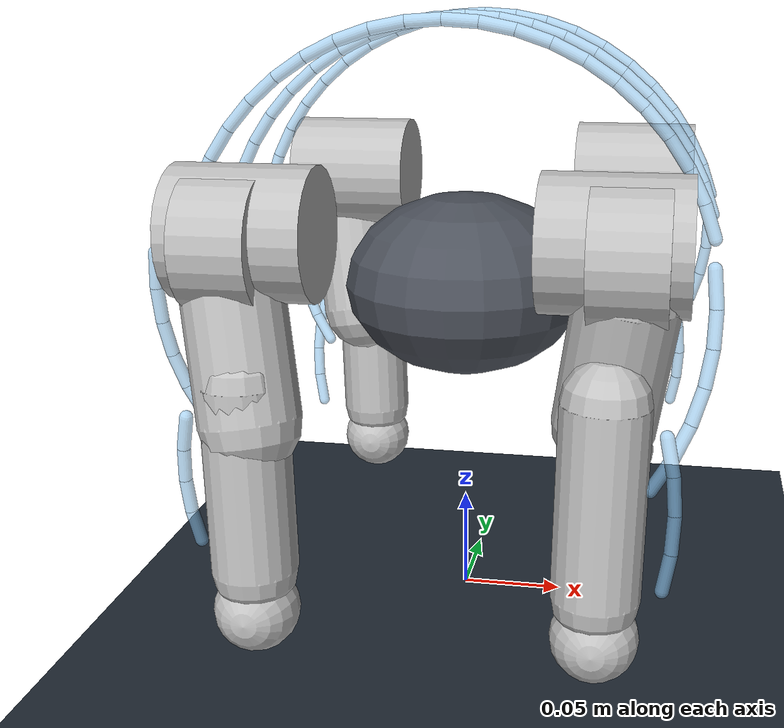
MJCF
<mujoco model="rollingquad_2">
  <compiler angle="radian" autolimits="true" />
  <option timestep="0.001" gravity="0 0 -9.81" integrator="implicitfast" cone="elliptic" iterations="20" ls_iterations="10" />
  <visual>
    <global azimuth="120" elevation="-18" offwidth="960" offheight="720" />
    <headlight ambient="0.35 0.35 0.35" diffuse="0.65 0.65 0.65" specular="0.20 0.20 0.20" />
  </visual>
  <asset>
    <texture type="skybox" builtin="gradient" rgb1=".18 .23 .30" rgb2=".02 .03 .05" width="512" height="512" />
    <texture name="grid" type="2d" builtin="checker" width="512" height="512" rgb1=".18 .22 .27" rgb2=".10 .13 .17" />
    <material name="ground" texture="grid" texrepeat="1 1" texuniform="true" reflectance="0.05" />
    <mesh name="Lower_leg_with_foot_1" content_type="model/stl" file="../meshes/Lower_leg_with_foot_1.stl" />
    <mesh name="Lower_leg_with_foot_1_2" content_type="model/stl" file="../meshes/Lower_leg_with_foot_1_2.stl" />
    <mesh name="Lower_leg_with_foot_mirror_1" content_type="model/stl" file="../meshes/Lower_leg_with_foot_mirror_1.stl" />
    <mesh name="Lower_leg_with_foot_mirror_1_2" content_type="model/stl" file="../meshes/Lower_leg_with_foot_mirror_1_2.stl" />
    <mesh name="Upperleg_with_motor_1" content_type="model/stl" file="../meshes/Upperleg_with_motor_1.stl" />
    <mesh name="Upperleg_with_motor_1_2" content_type="model/stl" file="../meshes/Upperleg_with_motor_1_2.stl" />
    <mesh name="Upperleg_with_motor_mirror_1" content_type="model/stl" file="../meshes/Upperleg_with_motor_mirror_1.stl" />
    <mesh name="Upperleg_with_motor_mirror_1_2" content_type="model/stl" file="../meshes/Upperleg_with_motor_mirror_1_2.stl" />
    <mesh name="abduction_mirror_1" content_type="model/stl" file="../meshes/abduction_mirror_1.stl" />
    <mesh name="abduction_mirror_1_2" content_type="model/stl" file="../meshes/abduction_mirror_1_2.stl" />
    <mesh name="abduction_1" content_type="model/stl" file="../meshes/abduction_1.stl" />
    <mesh name="abduction_1_2" content_type="model/stl" file="../meshes/abduction_1_2.stl" />
    <mesh name="torso_2" content_type="model/stl" file="../meshes/torso_2.stl" />
  </asset>
  <default>
    <joint limited="true" damping="0.01" armature="0.0016" />
    <!-- Individual robot geoms override these masks with the self-collision
         whitelist below.  Bit 1 remains the floor category. -->
    <geom contype="0" conaffinity="1" condim="3" friction="0.8 0.02 0.01" solref="0.01 1" solimp="0.9 0.95 0.001" />
    <!-- Position servo: kp=5, kd=0.1, torque limited to +/-3 N m. -->
    <default class="single_servo">
      <general forcelimited="true" forcerange="-3 3" ctrllimited="true" gainprm="5 0 0" biastype="affine" biasprm="0 -5 -0.1" />
    </default>
  </default>
  <worldbody>
    <light name="key" directional="true" castshadow="true" pos="-1 -2 4" dir="0.25 0.15 -1" diffuse="0.85 0.85 0.82" specular="0.20 0.20 0.20" />
    <camera name="tracking" mode="targetbody" target="torso" pos="0.55 -0.65 0.40" />
    <geom name="floor" type="plane" size="12 6 0.05" contype="1" conaffinity="0" material="ground" />
    <body name="torso" pos="0 0 0.21">
      <freejoint name="root" />
      <inertial pos="-0.000349048829 -2.267291516e-05 -0.0168232962" mass="1.47556" fullinertia="0.00473904 0.00838848 0.00826464 1.23727e-08 7.69713e-05 -7.00545e-07" />
      <!-- Collision bits: 2=front leg, 4=rear leg, 8=foot/shank,
           16=torso.  Enabled pairs: front-rear leg, leg-torso,
           foot-leg and foot-foot. -->
      <body name="front_right_hip_abduction_body" pos="0.0752002 -0.0650008 -3.15437e-07" quat="0.707105 0.707108 1.28657e-06 5.65589e-07">
        <inertial pos="0.00310332 -0.00189648 -0.160009" quat="0.969701 -0.00815916 0.0210186 -0.243253" mass="0.179903" diaginertia="7.15749e-05 5.16423e-05 4.28065e-05" />
        <joint name="front_right_hip" range="-1.745329252 1.902408885" actuatorfrcrange="-3 3" axis="0 0 1" />
        <geom name="front_right_hip_link_geom" contype="2" conaffinity="29" rgba="0.749 0.749 0.749 1" type="cylinder" size="0.03 0.0315" pos="0.0041383029 -0.0042852449 -0.15880149" quat="0.7071067811865476 0 0.7071067811865476 0" />
        <body name="front_right_thigh" pos="0.0146072 -0.00819716 -0.162001">
          <inertial pos="-0.0101991 -0.0708564 0.000226941" quat="0.617317 0.345769 -0.618182 0.342365" mass="0.18907" diaginertia="0.000132232 0.000106686 4.49875e-05" />
          <joint name="front_right_hip_abduction" range="-0.5236 3.66519" actuatorfrcrange="-3 3" axis="0.872069 -0.489382 0" />
          <geom name="front_right_thigh_geom" contype="2" conaffinity="29" rgba="0.749 0.749 0.749 1" type="capsule" size="0.023" fromto="-0.0039743073 -0.015540544 -0.0032586879 -0.0137759 -0.0767678 0.01075" />
          <geom name="front_right_thigh_motor" type="cylinder" size="0.03 0.0165" pos="-0.0039743073 0.00095945588 -0.0032586879" quat="0.7071067811865476 0 0.7071067811865476 0" contype="2" conaffinity="29" rgba="0.749 0.749 0.749 1" />
          <body name="front_right_shank" pos="-0.0137759 -0.0767678 0.01075">
            <inertial pos="0.00457242 -0.0602669 -0.0272819" quat="0.439984 0.532687 -0.48053 0.540139" mass="0.046425" diaginertia="6.03771e-05 5.63949e-05 8.99449e-06" />
            <joint name="front_right_knee" range="0.1745329252 2.094395102" actuatorfrcrange="-3 3" axis="0 0 -1" />
            <geom name="front_right_foot_proxy" contype="8" conaffinity="15" rgba="0.749 0.749 0.749 1" type="sphere" size="0.0195" pos="1.796e-05 -0.08776548 -0.02669029" />
            <geom name="front_right_shank_geom" type="capsule" size="0.0195" fromto="0.0021300607 0.018498501 -0.026470547 1.796e-05 -0.06826548 -0.02669029" contype="8" conaffinity="15" rgba="0.749 0.749 0.749 1" />
            <site name="front_right_foot_site" pos="0.00001796 -0.08776548 -0.02669029" size="0.004" />
            <geom name="front_right_shank_shell_01" type="capsule" size="0.003" fromto="0.027934405 -0.058150694 -0.037831409 0.03098321 -0.042328818 -0.035467809" contype="16" conaffinity="7" rgba="0.55 0.78 0.95 0.60" />
            <geom name="front_right_shank_shell_02" type="capsule" size="0.003" fromto="0.03098321 -0.042328818 -0.035467809 0.03192275 -0.026271153 -0.032921786" contype="16" conaffinity="7" rgba="0.55 0.78 0.95 0.60" />
            <geom name="front_right_shank_shell_03" type="capsule" size="0.003" fromto="0.03192275 -0.026271153 -0.032921786 0.030736947 -0.01025245 -0.030236903" contype="16" conaffinity="7" rgba="0.55 0.78 0.95 0.60" />
            <geom name="front_right_shank_shell_04" type="capsule" size="0.003" fromto="0.030736947 -0.01025245 -0.030236903 0.027446093 0.0054532073 -0.0274591" contype="16" conaffinity="7" rgba="0.55 0.78 0.95 0.60" />
          </body>
          <geom name="front_right_thigh_shell_01" type="capsule" size="0.003" fromto="0.030420244 -0.035817117 -0.0061410306 0.031050817 -0.019741245 -0.0036147138" contype="16" conaffinity="7" rgba="0.55 0.78 0.95 0.60" />
          <geom name="front_right_thigh_shell_02" type="capsule" size="0.003" fromto="0.031050817 -0.019741245 -0.0036147138 0.029559616 -0.0036938245 -0.0012758671" contype="16" conaffinity="7" rgba="0.55 0.78 0.95 0.60" />
          <geom name="front_right_thigh_shell_03" type="capsule" size="0.003" fromto="0.0074323744 -0.094994825 -0.017224178 0.016085571 -0.081490554 -0.014400983" contype="16" conaffinity="7" rgba="0.55 0.78 0.95 0.60" />
          <geom name="front_right_thigh_shell_04" type="capsule" size="0.003" fromto="0.016085571 -0.081490554 -0.014400983 0.022873054 -0.066958188 -0.011580703" contype="16" conaffinity="7" rgba="0.55 0.78 0.95 0.60" />
          <geom name="front_right_thigh_shell_05" type="capsule" size="0.003" fromto="0.022873054 -0.066958188 -0.011580703 0.027678687 -0.051646379 -0.0088115915" contype="16" conaffinity="7" rgba="0.55 0.78 0.95 0.60" />
          <geom name="front_right_thigh_shell_06" type="capsule" size="0.003" fromto="0.027678687 -0.051646379 -0.0088115915 0.030420244 -0.035817117 -0.0061410306" contype="16" conaffinity="7" rgba="0.55 0.78 0.95 0.60" />
        </body>
      </body>
      <body name="rear_left_hip_abduction_body" pos="-0.0752002 0.0650008 3.15437e-07" quat="0.707105 0.707108 1.28657e-06 5.65589e-07">
        <inertial pos="-0.00310332 -0.00189648 0.160009" quat="0.969701 0.00815916 0.0210186 0.243253" mass="0.179903" diaginertia="7.15749e-05 5.16423e-05 4.28065e-05" />
        <joint name="rear_left_hip" range="-1.745329252 1.902408885" actuatorfrcrange="-3 3" axis="0 0 -1" />
        <geom name="rear_left_hip_link_geom" contype="4" conaffinity="27" rgba="0.749 0.749 0.749 1" type="cylinder" size="0.03 0.0315" pos="-0.0041383029 -0.0042852449 0.15880149" quat="0.7071067811865476 0 0.7071067811865476 0" />
        <body name="rear_left_thigh" pos="-0.0156536 -0.00878442 0.162001">
          <inertial pos="0.0112456 -0.0702691 -0.000226941" quat="0.345769 0.617317 -0.342365 0.618182" mass="0.18907" diaginertia="0.000132232 0.000106686 4.49875e-05" />
          <joint name="rear_left_hip_abduction" range="-0.5236 3.66519" actuatorfrcrange="-3 3" axis="-0.872069 -0.489382 0" />
          <geom name="rear_left_thigh_geom" contype="4" conaffinity="27" rgba="0.749 0.749 0.749 1" type="capsule" size="0.023" fromto="0.0050197324 -0.014953284 0.0032551564 0.0148224 -0.0761805 0.014" />
          <geom name="rear_left_thigh_motor" type="cylinder" size="0.03 0.0165" pos="0.0050197324 0.0015467162 0.0032551564" quat="0.7071067811865476 0 0.7071067811865476 0" contype="4" conaffinity="27" rgba="0.749 0.749 0.749 1" />
          <body name="rear_left_shank" pos="0.0148224 -0.0761805 0.014">
            <inertial pos="-0.00457242 -0.0602669 0.0025319" quat="0.532687 0.439984 -0.540139 0.48053" mass="0.046425" diaginertia="6.03771e-05 5.63949e-05 8.99449e-06" />
            <joint name="rear_left_knee" range="0.1745329252 2.094395102" actuatorfrcrange="-3 3" axis="0 0 1" />
            <geom name="rear_left_foot_proxy" contype="8" conaffinity="15" rgba="0.749 0.749 0.749 1" type="sphere" size="0.0195" pos="-1.796e-05 -0.08776548 0.00194029" />
            <geom name="rear_left_shank_geom" type="capsule" size="0.0195" fromto="-0.0021300606 0.018498501 0.0017205471 -1.796e-05 -0.06826548 0.00194029" contype="8" conaffinity="15" rgba="0.749 0.749 0.749 1" />
            <site name="rear_left_foot_site" pos="-0.00001796 -0.08776548 0.00194029" size="0.004" />
            <geom name="rear_left_shank_shell_01" type="capsule" size="0.003" fromto="-0.029528793 0.00049698888 -0.00021604084 -0.032819618 -0.015208683 -0.0029937964" contype="16" conaffinity="7" rgba="0.55 0.78 0.95 0.60" />
            <geom name="rear_left_shank_shell_02" type="capsule" size="0.003" fromto="-0.032819618 -0.015208683 -0.0029937964 -0.034005391 -0.031227398 -0.0056786219" contype="16" conaffinity="7" rgba="0.55 0.78 0.95 0.60" />
            <geom name="rear_left_shank_shell_03" type="capsule" size="0.003" fromto="-0.034005391 -0.031227398 -0.0056786219 -0.033065823 -0.047285071 -0.0082245792" contype="16" conaffinity="7" rgba="0.55 0.78 0.95 0.60" />
            <geom name="rear_left_shank_shell_04" type="capsule" size="0.003" fromto="-0.033065823 -0.047285071 -0.0082245792 -0.03001699 -0.063106953 -0.010588106" contype="16" conaffinity="7" rgba="0.55 0.78 0.95 0.60" />
          </body>
          <geom name="rear_left_thigh_shell_01" type="capsule" size="0.003" fromto="-0.027968146 -0.0040773009 0.005041528 -0.029459315 -0.020124721 0.0027026617" contype="16" conaffinity="7" rgba="0.55 0.78 0.95 0.60" />
          <geom name="rear_left_thigh_shell_02" type="capsule" size="0.003" fromto="-0.029459315 -0.020124721 0.0027026617 -0.028828709 -0.036200591 0.00017633679" contype="16" conaffinity="7" rgba="0.55 0.78 0.95 0.60" />
          <geom name="rear_left_thigh_shell_03" type="capsule" size="0.003" fromto="-0.028828709 -0.036200591 0.00017633679 -0.026087119 -0.052029848 -0.0024942205" contype="16" conaffinity="7" rgba="0.55 0.78 0.95 0.60" />
          <geom name="rear_left_thigh_shell_04" type="capsule" size="0.003" fromto="-0.026087119 -0.052029848 -0.0024942205 -0.021281453 -0.067341649 -0.0052633163" contype="16" conaffinity="7" rgba="0.55 0.78 0.95 0.60" />
          <geom name="rear_left_thigh_shell_05" type="capsule" size="0.003" fromto="-0.021281453 -0.067341649 -0.0052633163 -0.014493938 -0.081874006 -0.0080835706" contype="16" conaffinity="7" rgba="0.55 0.78 0.95 0.60" />
          <geom name="rear_left_thigh_shell_06" type="capsule" size="0.003" fromto="-0.014493938 -0.081874006 -0.0080835706 -0.0058407097 -0.095378264 -0.010906728" contype="16" conaffinity="7" rgba="0.55 0.78 0.95 0.60" />
        </body>
      </body>
      <body name="front_left_hip_abduction_body" pos="0.0751998 0.0650012 1.62087e-07" quat="0.707105 0.707108 1.28657e-06 5.65589e-07">
        <inertial pos="0.00284687 -0.00174682 0.15995" quat="0.969271 -0.0133055 -0.0221507 -0.244634" mass="0.179903" diaginertia="7.23188e-05 5.20415e-05 4.37798e-05" />
        <joint name="front_left_hip" range="-1.74533 1.90241" actuatorfrcrange="-3 3" />
        <geom name="front_left_hip_link_geom" contype="2" conaffinity="29" rgba="0.749 0.749 0.749 1" type="cylinder" size="0.03 0.0315" pos="0.0041243067 -0.0042493257 0.15847315" quat="0.7071067811865476 0 0.7071067811865476 0" />
        <body name="front_left_thigh" pos="0.0146072 -0.00819716 0.162001">
          <inertial pos="-0.0103691 -0.0707641 0.000638364" quat="0.614246 0.344453 -0.621362 0.343458" mass="0.18907" diaginertia="0.000132245 0.000106711 4.4972e-05" />
          <joint name="front_left_hip_abduction" range="-0.5236 3.66519" actuatorfrcrange="-3 3" axis="-0.872069 0.489382 0" />
          <geom name="front_left_thigh_geom" contype="2" conaffinity="29" rgba="0.749 0.749 0.749 1" type="capsule" size="0.023" fromto="-0.0043240375 -0.015442675 0.0039704566 -0.0139503 -0.0766699 -0.00975" />
          <geom name="front_left_thigh_motor" type="cylinder" size="0.03 0.0165" pos="-0.0043240375 0.0010573248 0.0039704566" quat="0.7071067811865476 0 0.7071067811865476 0" contype="2" conaffinity="29" rgba="0.749 0.749 0.749 1" />
          <body name="front_left_shank" pos="-0.0139503 -0.0766699 -0.00975">
            <inertial pos="0.00457242 -0.0602669 0.0272819" quat="0.48053 0.540139 -0.439984 0.532687" mass="0.046425" diaginertia="6.03771e-05 5.63949e-05 8.99449e-06" />
            <joint name="front_left_knee" range="0.17453 2.0944" actuatorfrcrange="-3 3" axis="0 0 -1" />
            <geom name="front_left_foot_proxy" contype="8" conaffinity="15" rgba="0.749 0.749 0.749 1" type="sphere" size="0.0195" pos="2.256e-05 -0.08782371 0.02672838" />
            <geom name="front_left_shank_geom" type="capsule" size="0.0195" fromto="0.002221409 0.018498555 0.026729771 2.256e-05 -0.06832371 0.02672838" contype="8" conaffinity="15" rgba="0.749 0.749 0.749 1" />
            <site name="front_left_foot_site" pos="0.00002256 -0.08782371 0.02672838" size="0.004" />
            <geom name="front_left_shank_shell_01" type="capsule" size="0.003" fromto="0.028034344 -0.05787434 0.038052949 0.03108315 -0.042052465 0.035689343" contype="16" conaffinity="7" rgba="0.55 0.78 0.95 0.60" />
            <geom name="front_left_shank_shell_02" type="capsule" size="0.003" fromto="0.03108315 -0.042052465 0.035689343 0.032022692 -0.025994804 0.033143294" contype="16" conaffinity="7" rgba="0.55 0.78 0.95 0.60" />
            <geom name="front_left_shank_shell_03" type="capsule" size="0.003" fromto="0.032022692 -0.025994804 0.033143294 0.030836892 -0.0099761087 0.030458364" contype="16" conaffinity="7" rgba="0.55 0.78 0.95 0.60" />
            <geom name="front_left_shank_shell_04" type="capsule" size="0.003" fromto="0.030836892 -0.0099761087 0.030458364 0.027546042 0.0057295374 0.027680494" contype="16" conaffinity="7" rgba="0.55 0.78 0.95 0.60" />
          </body>
          <geom name="front_left_thigh_shell_01" type="capsule" size="0.003" fromto="0.030479483 -0.035709936 0.006831667 0.031110044 -0.019634085 0.0043052089" contype="16" conaffinity="7" rgba="0.55 0.78 0.95 0.60" />
          <geom name="front_left_thigh_shell_02" type="capsule" size="0.003" fromto="0.031110044 -0.019634085 0.0043052089 0.02961883 -0.0035866882 0.0019662124" contype="16" conaffinity="7" rgba="0.55 0.78 0.95 0.60" />
          <geom name="front_left_thigh_shell_03" type="capsule" size="0.003" fromto="0.0074916509 -0.094887578 0.017915249 0.01614484 -0.08138332 0.015091969" contype="16" conaffinity="7" rgba="0.55 0.78 0.95 0.60" />
          <geom name="front_left_thigh_shell_04" type="capsule" size="0.003" fromto="0.01614484 -0.08138332 0.015091969 0.022932314 -0.066850969 0.012271586" contype="16" conaffinity="7" rgba="0.55 0.78 0.95 0.60" />
          <geom name="front_left_thigh_shell_05" type="capsule" size="0.003" fromto="0.022932314 -0.066850969 0.012271586 0.027737937 -0.051539178 0.0095023583" contype="16" conaffinity="7" rgba="0.55 0.78 0.95 0.60" />
          <geom name="front_left_thigh_shell_06" type="capsule" size="0.003" fromto="0.027737937 -0.051539178 0.0095023583 0.030479483 -0.035709936 0.006831667" contype="16" conaffinity="7" rgba="0.55 0.78 0.95 0.60" />
        </body>
      </body>
      <body name="rear_right_hip_abduction_body" pos="-0.0751998 -0.0650012 -1.62087e-07" quat="0.707105 0.707108 1.28657e-06 5.65589e-07">
        <inertial pos="-0.00284687 -0.00174682 -0.15995" quat="0.969271 0.0133055 -0.0221507 0.244634" mass="0.179903" diaginertia="7.23188e-05 5.20415e-05 4.37798e-05" />
        <joint name="rear_right_hip" range="-1.74533 1.90241" actuatorfrcrange="-3 3" axis="0 0 -1" />
        <geom name="rear_right_hip_link_geom" contype="4" conaffinity="27" rgba="0.749 0.749 0.749 1" type="cylinder" size="0.03 0.0315" pos="-0.0041243068 -0.0042493257 -0.15847315" quat="0.7071067811865476 0 0.7071067811865476 0" />
        <body name="rear_right_thigh" pos="-0.0146072 -0.00819716 -0.162001">
          <inertial pos="0.0103691 -0.0707641 -0.000638364" quat="0.344453 0.614246 -0.343458 0.621362" mass="0.18907" diaginertia="0.000132245 0.000106711 4.4972e-05" />
          <joint name="rear_right_hip_abduction" range="-0.5236 3.66519" actuatorfrcrange="-3 3" axis="0.872069 0.489382 0" />
          <geom name="rear_right_thigh_geom" contype="4" conaffinity="27" rgba="0.749 0.749 0.749 1" type="capsule" size="0.023" fromto="0.0043240377 -0.015442675 -0.0039704566 0.0139503 -0.0766699 0.00975" />
          <geom name="rear_right_thigh_motor" type="cylinder" size="0.03 0.0165" pos="0.0043240377 0.0010573248 -0.0039704566" quat="0.7071067811865476 0 0.7071067811865476 0" contype="4" conaffinity="27" rgba="0.749 0.749 0.749 1" />
          <body name="rear_right_shank" pos="0.0139503 -0.0766699 0.00975">
            <inertial pos="-0.00457242 -0.0602669 -0.0272819" quat="0.540139 0.48053 -0.532687 0.439984" mass="0.046425" diaginertia="6.03771e-05 5.63949e-05 8.99449e-06" />
            <joint name="rear_right_knee" range="0.17453 2.0944" actuatorfrcrange="-3 3" />
            <geom name="rear_right_foot_proxy" contype="8" conaffinity="15" rgba="0.749 0.749 0.749 1" type="sphere" size="0.0195" pos="-2.256e-05 -0.08782371 -0.02672838" />
            <geom name="rear_right_shank_geom" type="capsule" size="0.0195" fromto="-0.0022214094 0.018498555 -0.026729771 -2.256e-05 -0.06832371 -0.02672838" contype="8" conaffinity="15" rgba="0.749 0.749 0.749 1" />
            <site name="rear_right_foot_site" pos="-0.00002256 -0.08782371 -0.02672838" size="0.004" />
            <geom name="rear_right_shank_shell_01" type="capsule" size="0.003" fromto="-0.02979691 0.00037468555 -0.024754914 -0.033087725 -0.01533096 -0.021976999" contype="16" conaffinity="7" rgba="0.55 0.78 0.95 0.60" />
            <geom name="rear_right_shank_shell_02" type="capsule" size="0.003" fromto="-0.033087725 -0.01533096 -0.021976999 -0.034273487 -0.031349649 -0.019292016" contype="16" conaffinity="7" rgba="0.55 0.78 0.95 0.60" />
            <geom name="rear_right_shank_shell_03" type="capsule" size="0.003" fromto="-0.034273487 -0.031349649 -0.019292016 -0.033333908 -0.047407298 -0.016745905" contype="16" conaffinity="7" rgba="0.55 0.78 0.95 0.60" />
            <geom name="rear_right_shank_shell_04" type="capsule" size="0.003" fromto="-0.033333908 -0.047407298 -0.016745905 -0.030285065 -0.063229156 -0.014382233" contype="16" conaffinity="7" rgba="0.55 0.78 0.95 0.60" />
          </body>
          <geom name="rear_right_thigh_shell_01" type="capsule" size="0.003" fromto="-0.028954112 -0.0047721126 -0.0057352116 -0.030445291 -0.020819515 -0.0033962282" contype="16" conaffinity="7" rgba="0.55 0.78 0.95 0.60" />
          <geom name="rear_right_thigh_shell_02" type="capsule" size="0.003" fromto="-0.030445291 -0.020819515 -0.0033962282 -0.029814696 -0.036895365 -0.00086977301" contype="16" conaffinity="7" rgba="0.55 0.78 0.95 0.60" />
          <geom name="rear_right_thigh_shell_03" type="capsule" size="0.003" fromto="-0.029814696 -0.036895365 -0.00086977301 -0.027073118 -0.0527246 0.0018009256" contype="16" conaffinity="7" rgba="0.55 0.78 0.95 0.60" />
          <geom name="rear_right_thigh_shell_04" type="capsule" size="0.003" fromto="-0.027073118 -0.0527246 0.0018009256 -0.022267465 -0.068036378 0.0045701713" contype="16" conaffinity="7" rgba="0.55 0.78 0.95 0.60" />
          <geom name="rear_right_thigh_shell_05" type="capsule" size="0.003" fromto="-0.022267465 -0.068036378 0.0045701713 -0.015479964 -0.082568711 0.0073905814" contype="16" conaffinity="7" rgba="0.55 0.78 0.95 0.60" />
          <geom name="rear_right_thigh_shell_06" type="capsule" size="0.003" fromto="-0.015479964 -0.082568711 0.0073905814 -0.0068267493 -0.096072945 0.010213898" contype="16" conaffinity="7" rgba="0.55 0.78 0.95 0.60" />
        </body>
      </body>
      <geom name="torso_shell_01" type="capsule" size="0.003" fromto="0.12025777 -0.06 -0.0072940978 0.115023 -0.06 0.0081270184" contype="16" conaffinity="7" rgba="0.55 0.78 0.95 0.60" />
      <geom name="torso_shell_02" type="capsule" size="0.003" fromto="0.12025777 0 -0.0072940978 0.115023 0 0.0081270184" contype="16" conaffinity="7" rgba="0.55 0.78 0.95 0.60" />
      <geom name="torso_shell_03" type="capsule" size="0.003" fromto="0.12025777 0.06 -0.0072940978 0.115023 0.06 0.0081270184" contype="16" conaffinity="7" rgba="0.55 0.78 0.95 0.60" />
      <geom name="torso_shell_04" type="capsule" size="0.003" fromto="0.115023 -0.06 0.0081270184 0.10782016 -0.06 0.022732931" contype="16" conaffinity="7" rgba="0.55 0.78 0.95 0.60" />
      <geom name="torso_shell_05" type="capsule" size="0.003" fromto="0.115023 0 0.0081270184 0.10782016 0 0.022732931" contype="16" conaffinity="7" rgba="0.55 0.78 0.95 0.60" />
      <geom name="torso_shell_06" type="capsule" size="0.003" fromto="0.115023 0.06 0.0081270184 0.10782016 0.06 0.022732931" contype="16" conaffinity="7" rgba="0.55 0.78 0.95 0.60" />
      <geom name="torso_shell_07" type="capsule" size="0.003" fromto="0.10782016 -0.06 0.022732931 0.098772491 -0.06 0.036273729" contype="16" conaffinity="7" rgba="0.55 0.78 0.95 0.60" />
      <geom name="torso_shell_08" type="capsule" size="0.003" fromto="0.10782016 0 0.022732931 0.098772491 0 0.036273729" contype="16" conaffinity="7" rgba="0.55 0.78 0.95 0.60" />
      <geom name="torso_shell_09" type="capsule" size="0.003" fromto="0.10782016 0.06 0.022732931 0.098772491 0.06 0.036273729" contype="16" conaffinity="7" rgba="0.55 0.78 0.95 0.60" />
      <geom name="torso_shell_10" type="capsule" size="0.003" fromto="0.098772491 -0.06 0.036273729 0.088034794 -0.06 0.048517725" contype="16" conaffinity="7" rgba="0.55 0.78 0.95 0.60" />
      <geom name="torso_shell_11" type="capsule" size="0.003" fromto="0.098772491 0 0.036273729 0.088034794 0 0.048517725" contype="16" conaffinity="7" rgba="0.55 0.78 0.95 0.60" />
      <geom name="torso_shell_12" type="capsule" size="0.003" fromto="0.098772491 0.06 0.036273729 0.088034794 0.06 0.048517725" contype="16" conaffinity="7" rgba="0.55 0.78 0.95 0.60" />
      <geom name="torso_shell_13" type="capsule" size="0.003" fromto="0.088034794 -0.06 0.048517725 0.075790798 -0.06 0.059255422" contype="16" conaffinity="7" rgba="0.55 0.78 0.95 0.60" />
      <geom name="torso_shell_14" type="capsule" size="0.003" fromto="0.088034794 0 0.048517725 0.075790798 0 0.059255422" contype="16" conaffinity="7" rgba="0.55 0.78 0.95 0.60" />
      <geom name="torso_shell_15" type="capsule" size="0.003" fromto="0.088034794 0.06 0.048517725 0.075790798 0.06 0.059255422" contype="16" conaffinity="7" rgba="0.55 0.78 0.95 0.60" />
      <geom name="torso_shell_16" type="capsule" size="0.003" fromto="0.075790798 -0.06 0.059255422 0.06225 -0.06 0.068303094" contype="16" conaffinity="7" rgba="0.55 0.78 0.95 0.60" />
      <geom name="torso_shell_17" type="capsule" size="0.003" fromto="0.075790798 0 0.059255422 0.06225 0 0.068303094" contype="16" conaffinity="7" rgba="0.55 0.78 0.95 0.60" />
      <geom name="torso_shell_18" type="capsule" size="0.003" fromto="0.075790798 0.06 0.059255422 0.06225 0.06 0.068303094" contype="16" conaffinity="7" rgba="0.55 0.78 0.95 0.60" />
      <geom name="torso_shell_19" type="capsule" size="0.003" fromto="0.06225 -0.06 0.068303094 0.047644087 -0.06 0.075505933" contype="16" conaffinity="7" rgba="0.55 0.78 0.95 0.60" />
      <geom name="torso_shell_20" type="capsule" size="0.003" fromto="0.06225 0 0.068303094 0.047644087 0 0.075505933" contype="16" conaffinity="7" rgba="0.55 0.78 0.95 0.60" />
      <geom name="torso_shell_21" type="capsule" size="0.003" fromto="0.06225 0.06 0.068303094 0.047644087 0.06 0.075505933" contype="16" conaffinity="7" rgba="0.55 0.78 0.95 0.60" />
      <geom name="torso_shell_22" type="capsule" size="0.003" fromto="0.047644087 -0.06 0.075505933 0.032222971 -0.06 0.080740696" contype="16" conaffinity="7" rgba="0.55 0.78 0.95 0.60" />
      <geom name="torso_shell_23" type="capsule" size="0.003" fromto="0.047644087 0 0.075505933 0.032222971 0 0.080740696" contype="16" conaffinity="7" rgba="0.55 0.78 0.95 0.60" />
      <geom name="torso_shell_24" type="capsule" size="0.003" fromto="0.047644087 0.06 0.075505933 0.032222971 0.06 0.080740696" contype="16" conaffinity="7" rgba="0.55 0.78 0.95 0.60" />
      <geom name="torso_shell_25" type="capsule" size="0.003" fromto="0.032222971 -0.06 0.080740696 0.016250511 -0.06 0.083917816" contype="16" conaffinity="7" rgba="0.55 0.78 0.95 0.60" />
      <geom name="torso_shell_26" type="capsule" size="0.003" fromto="0.032222971 0 0.080740696 0.016250511 0 0.083917816" contype="16" conaffinity="7" rgba="0.55 0.78 0.95 0.60" />
      <geom name="torso_shell_27" type="capsule" size="0.003" fromto="0.032222971 0.06 0.080740696 0.016250511 0.06 0.083917816" contype="16" conaffinity="7" rgba="0.55 0.78 0.95 0.60" />
      <geom name="torso_shell_28" type="capsule" size="0.003" fromto="0.016250511 -0.06 0.083917816 7.6234263e-18 -0.06 0.084982931" contype="16" conaffinity="7" rgba="0.55 0.78 0.95 0.60" />
      <geom name="torso_shell_29" type="capsule" size="0.003" fromto="0.016250511 0 0.083917816 7.6234263e-18 0 0.084982931" contype="16" conaffinity="7" rgba="0.55 0.78 0.95 0.60" />
      <geom name="torso_shell_30" type="capsule" size="0.003" fromto="0.016250511 0.06 0.083917816 7.6234263e-18 0.06 0.084982931" contype="16" conaffinity="7" rgba="0.55 0.78 0.95 0.60" />
      <geom name="torso_shell_31" type="capsule" size="0.003" fromto="7.6234263e-18 -0.06 0.084982931 -0.016250511 -0.06 0.083917816" contype="16" conaffinity="7" rgba="0.55 0.78 0.95 0.60" />
      <geom name="torso_shell_32" type="capsule" size="0.003" fromto="7.6234263e-18 0 0.084982931 -0.016250511 0 0.083917816" contype="16" conaffinity="7" rgba="0.55 0.78 0.95 0.60" />
      <geom name="torso_shell_33" type="capsule" size="0.003" fromto="7.6234263e-18 0.06 0.084982931 -0.016250511 0.06 0.083917816" contype="16" conaffinity="7" rgba="0.55 0.78 0.95 0.60" />
      <geom name="torso_shell_34" type="capsule" size="0.003" fromto="-0.016250511 -0.06 0.083917816 -0.032222971 -0.06 0.080740696" contype="16" conaffinity="7" rgba="0.55 0.78 0.95 0.60" />
      <geom name="torso_shell_35" type="capsule" size="0.003" fromto="-0.016250511 0 0.083917816 -0.032222971 0 0.080740696" contype="16" conaffinity="7" rgba="0.55 0.78 0.95 0.60" />
      <geom name="torso_shell_36" type="capsule" size="0.003" fromto="-0.016250511 0.06 0.083917816 -0.032222971 0.06 0.080740696" contype="16" conaffinity="7" rgba="0.55 0.78 0.95 0.60" />
      <geom name="torso_shell_37" type="capsule" size="0.003" fromto="-0.032222971 -0.06 0.080740696 -0.047644087 -0.06 0.075505933" contype="16" conaffinity="7" rgba="0.55 0.78 0.95 0.60" />
      <geom name="torso_shell_38" type="capsule" size="0.003" fromto="-0.032222971 0 0.080740696 -0.047644087 0 0.075505933" contype="16" conaffinity="7" rgba="0.55 0.78 0.95 0.60" />
      <geom name="torso_shell_39" type="capsule" size="0.003" fromto="-0.032222971 0.06 0.080740696 -0.047644087 0.06 0.075505933" contype="16" conaffinity="7" rgba="0.55 0.78 0.95 0.60" />
      <geom name="torso_shell_40" type="capsule" size="0.003" fromto="-0.047644087 -0.06 0.075505933 -0.06225 -0.06 0.068303094" contype="16" conaffinity="7" rgba="0.55 0.78 0.95 0.60" />
      <geom name="torso_shell_41" type="capsule" size="0.003" fromto="-0.047644087 0 0.075505933 -0.06225 0 0.068303094" contype="16" conaffinity="7" rgba="0.55 0.78 0.95 0.60" />
      <geom name="torso_shell_42" type="capsule" size="0.003" fromto="-0.047644087 0.06 0.075505933 -0.06225 0.06 0.068303094" contype="16" conaffinity="7" rgba="0.55 0.78 0.95 0.60" />
      <geom name="torso_shell_43" type="capsule" size="0.003" fromto="-0.06225 -0.06 0.068303094 -0.075790798 -0.06 0.059255422" contype="16" conaffinity="7" rgba="0.55 0.78 0.95 0.60" />
      <geom name="torso_shell_44" type="capsule" size="0.003" fromto="-0.06225 0 0.068303094 -0.075790798 0 0.059255422" contype="16" conaffinity="7" rgba="0.55 0.78 0.95 0.60" />
      <geom name="torso_shell_45" type="capsule" size="0.003" fromto="-0.06225 0.06 0.068303094 -0.075790798 0.06 0.059255422" contype="16" conaffinity="7" rgba="0.55 0.78 0.95 0.60" />
      <geom name="torso_shell_46" type="capsule" size="0.003" fromto="-0.075790798 -0.06 0.059255422 -0.088034794 -0.06 0.048517725" contype="16" conaffinity="7" rgba="0.55 0.78 0.95 0.60" />
      <geom name="torso_shell_47" type="capsule" size="0.003" fromto="-0.075790798 0 0.059255422 -0.088034794 0 0.048517725" contype="16" conaffinity="7" rgba="0.55 0.78 0.95 0.60" />
      <geom name="torso_shell_48" type="capsule" size="0.003" fromto="-0.075790798 0.06 0.059255422 -0.088034794 0.06 0.048517725" contype="16" conaffinity="7" rgba="0.55 0.78 0.95 0.60" />
      <geom name="torso_shell_49" type="capsule" size="0.003" fromto="-0.088034794 -0.06 0.048517725 -0.098772491 -0.06 0.036273729" contype="16" conaffinity="7" rgba="0.55 0.78 0.95 0.60" />
      <geom name="torso_shell_50" type="capsule" size="0.003" fromto="-0.088034794 0 0.048517725 -0.098772491 0 0.036273729" contype="16" conaffinity="7" rgba="0.55 0.78 0.95 0.60" />
      <geom name="torso_shell_51" type="capsule" size="0.003" fromto="-0.088034794 0.06 0.048517725 -0.098772491 0.06 0.036273729" contype="16" conaffinity="7" rgba="0.55 0.78 0.95 0.60" />
      <geom name="torso_shell_52" type="capsule" size="0.003" fromto="-0.098772491 -0.06 0.036273729 -0.10782016 -0.06 0.022732931" contype="16" conaffinity="7" rgba="0.55 0.78 0.95 0.60" />
      <geom name="torso_shell_53" type="capsule" size="0.003" fromto="-0.098772491 0 0.036273729 -0.10782016 0 0.022732931" contype="16" conaffinity="7" rgba="0.55 0.78 0.95 0.60" />
      <geom name="torso_shell_54" type="capsule" size="0.003" fromto="-0.098772491 0.06 0.036273729 -0.10782016 0.06 0.022732931" contype="16" conaffinity="7" rgba="0.55 0.78 0.95 0.60" />
      <geom name="torso_shell_55" type="capsule" size="0.003" fromto="-0.10782016 -0.06 0.022732931 -0.115023 -0.06 0.0081270184" contype="16" conaffinity="7" rgba="0.55 0.78 0.95 0.60" />
      <geom name="torso_shell_56" type="capsule" size="0.003" fromto="-0.10782016 0 0.022732931 -0.115023 0 0.0081270184" contype="16" conaffinity="7" rgba="0.55 0.78 0.95 0.60" />
      <geom name="torso_shell_57" type="capsule" size="0.003" fromto="-0.10782016 0.06 0.022732931 -0.115023 0.06 0.0081270184" contype="16" conaffinity="7" rgba="0.55 0.78 0.95 0.60" />
      <geom name="torso_shell_58" type="capsule" size="0.003" fromto="-0.115023 -0.06 0.0081270184 -0.12025777 -0.06 -0.0072940978" contype="16" conaffinity="7" rgba="0.55 0.78 0.95 0.60" />
      <geom name="torso_shell_59" type="capsule" size="0.003" fromto="-0.115023 0 0.0081270184 -0.12025777 0 -0.0072940978" contype="16" conaffinity="7" rgba="0.55 0.78 0.95 0.60" />
      <geom name="torso_shell_60" type="capsule" size="0.003" fromto="-0.115023 0.06 0.0081270184 -0.12025777 0.06 -0.0072940978" contype="16" conaffinity="7" rgba="0.55 0.78 0.95 0.60" />
      <geom name="torso_box_proxy" type="ellipsoid" pos="0 0 -0.04507" size="0.06 0.06 0.04507" contype="16" conaffinity="7" rgba="0.30 0.32 0.36 1" />
    </body>
  </worldbody>
  <actuator>
    <!-- Canonical policy order: FL, FR, RL, RR; each abduction, hip, knee. -->
    <general name="front_left_hip_abduction_servo" joint="front_left_hip_abduction" class="single_servo" ctrlrange="-0.5236 3.66519" />
    <general name="front_left_hip_servo" joint="front_left_hip" class="single_servo" ctrlrange="-1.74533 1.90241" />
    <general name="front_left_knee_servo" joint="front_left_knee" class="single_servo" ctrlrange="0.17453 2.0944" />
    <general name="front_right_hip_abduction_servo" joint="front_right_hip_abduction" class="single_servo" ctrlrange="-0.5236 3.66519" />
    <general name="front_right_hip_servo" joint="front_right_hip" class="single_servo" ctrlrange="-1.745329252 1.902408885" />
    <general name="front_right_knee_servo" joint="front_right_knee" class="single_servo" ctrlrange="0.1745329252 2.094395102" />
    <general name="rear_left_hip_abduction_servo" joint="rear_left_hip_abduction" class="single_servo" ctrlrange="-0.5236 3.66519" />
    <general name="rear_left_hip_servo" joint="rear_left_hip" class="single_servo" ctrlrange="-1.745329252 1.902408885" />
    <general name="rear_left_knee_servo" joint="rear_left_knee" class="single_servo" ctrlrange="0.1745329252 2.094395102" />
    <general name="rear_right_hip_abduction_servo" joint="rear_right_hip_abduction" class="single_servo" ctrlrange="-0.5236 3.66519" />
    <general name="rear_right_hip_servo" joint="rear_right_hip" class="single_servo" ctrlrange="-1.74533 1.90241" />
    <general name="rear_right_knee_servo" joint="rear_right_knee" class="single_servo" ctrlrange="0.17453 2.0944" />
  </actuator>
  <sensor>
    <framequat name="base_quat" objtype="body" objname="torso" />
    <framepos name="base_position" objtype="body" objname="torso" />
    <framelinvel name="base_linear_velocity" objtype="body" objname="torso" />
    <frameangvel name="base_angular_velocity" objtype="body" objname="torso" />
    <jointpos name="front_right_hip_position" joint="front_right_hip" />
    <jointpos name="front_right_hip_abduction_position" joint="front_right_hip_abduction" />
    <jointpos name="front_right_knee_position" joint="front_right_knee" />
    <jointpos name="rear_left_hip_position" joint="rear_left_hip" />
    <jointpos name="rear_left_hip_abduction_position" joint="rear_left_hip_abduction" />
    <jointpos name="rear_left_knee_position" joint="rear_left_knee" />
    <jointpos name="front_left_hip_position" joint="front_left_hip" />
    <jointpos name="front_left_hip_abduction_position" joint="front_left_hip_abduction" />
    <jointpos name="front_left_knee_position" joint="front_left_knee" />
    <jointpos name="rear_right_hip_position" joint="rear_right_hip" />
    <jointpos name="rear_right_hip_abduction_position" joint="rear_right_hip_abduction" />
    <jointpos name="rear_right_knee_position" joint="rear_right_knee" />
  </sensor>
  <contact>
    <pair name="front_left_foot_proxy_vs_rear_left_foot_proxy" geom1="front_left_foot_proxy" geom2="rear_left_foot_proxy" condim="3" friction="0.8 0.02 0.01" solref="0.002 1" solimp="0.97 0.995 0.001" />
    <pair name="front_left_foot_proxy_vs_rear_left_shank_geom" geom1="front_left_foot_proxy" geom2="rear_left_shank_geom" condim="3" friction="0.8 0.02 0.01" solref="0.002 1" solimp="0.97 0.995 0.001" />
    <pair name="front_left_shank_geom_vs_rear_left_foot_proxy" geom1="front_left_shank_geom" geom2="rear_left_foot_proxy" condim="3" friction="0.8 0.02 0.01" solref="0.002 1" solimp="0.97 0.995 0.001" />
    <pair name="front_left_shank_geom_vs_rear_left_shank_geom" geom1="front_left_shank_geom" geom2="rear_left_shank_geom" condim="3" friction="0.8 0.02 0.01" solref="0.002 1" solimp="0.97 0.995 0.001" />
    <pair name="front_right_foot_proxy_vs_rear_right_foot_proxy" geom1="front_right_foot_proxy" geom2="rear_right_foot_proxy" condim="3" friction="0.8 0.02 0.01" solref="0.002 1" solimp="0.97 0.995 0.001" />
    <pair name="front_right_foot_proxy_vs_rear_right_shank_geom" geom1="front_right_foot_proxy" geom2="rear_right_shank_geom" condim="3" friction="0.8 0.02 0.01" solref="0.002 1" solimp="0.97 0.995 0.001" />
    <pair name="front_right_shank_geom_vs_rear_right_foot_proxy" geom1="front_right_shank_geom" geom2="rear_right_foot_proxy" condim="3" friction="0.8 0.02 0.01" solref="0.002 1" solimp="0.97 0.995 0.001" />
    <pair name="front_right_shank_geom_vs_rear_right_shank_geom" geom1="front_right_shank_geom" geom2="rear_right_shank_geom" condim="3" friction="0.8 0.02 0.01" solref="0.002 1" solimp="0.97 0.995 0.001" />
  </contact>
  <keyframe>
    <key name="open" qpos="0 0 0.1934653619 1 0 0 0 0 -0.1745329252 0 0 0.1745329252 0 0 -0.1745329252 0 0 0.1745329252 0" ctrl="-0.1745329252 0 0 -0.1745329252 0 0 0.1745329252 0 0 0.1745329252 0 0" />
    <key name="stand" qpos="0 0 0.1580029248 1 0 0 0 0.9 -0.1745329252 1.15 0.9 0.1745329252 1.15 0.9 -0.1745329252 1.15 0.9 0.1745329252 1.15" ctrl="-0.1745329252 0.9 1.15 -0.1745329252 0.9 1.15 0.1745329252 0.9 1.15 0.1745329252 0.9 1.15" />
    <key name="stand_previous" qpos="0 0 0.1867435755 1 0 0 0 0.33532733 -0.1745329252 0.53234438 0.33532733 0.1745329252 0.53234438 0.33532733 -0.1745329252 0.53234438 0.33532733 0.1745329252 0.53234438" ctrl="-0.1745329252 0.33532733 0.53234438 -0.1745329252 0.33532733 0.53234438 0.1745329252 0.33532733 0.53234438 0.1745329252 0.33532733 0.53234438" />
    <key name="park" qpos="0 0 0.1817521174 1 0 0 0 0.4983797927 -0.1745329252 0.3491569025 0.434095281 0.1745329252 0.0107701707 0.4983797927 -0.1745329252 0.3491569025 0.434095281 0.1745329252 0.0107701707" ctrl="-0.1745329252 0.4983797927 0.3491569025 -0.1745329252 0.4983797927 0.3491569025 0.1745329252 0.434095281 0.0107701707 0.1745329252 0.434095281 0.0107701707" />
    <key name="compact" qpos="0 0 0.1662524149 1 0 0 0 0.1108283051 -0.1745329252 0.9092586986 0.1108283051 0.1745329252 0.9092586986 0.1108283051 -0.1745329252 0.9092586986 0.1108283051 0.1745329252 0.9092586986" ctrl="-0.1745329252 0.1108283051 0.9092586986 -0.1745329252 0.1108283051 0.9092586986 0.1745329252 0.1108283051 0.9092586986 0.1745329252 0.1108283051 0.9092586986" />
    <!-- Valid-limit reset pose; unlike open, its knee values are in range. -->
    <key name="extended" qpos="0 0 0.192125779 1 0 0 0 0 -0.1745329252 0.1745329252 0 0.1745329252 0.1745329252 0 -0.1745329252 0.1745329252 0 0.1745329252 0.1745329252" ctrl="-0.1745329252 0 0.1745329252 -0.1745329252 0 0.1745329252 0.1745329252 0 0.1745329252 0.1745329252 0 0.1745329252" />
  </keyframe>
</mujoco>
